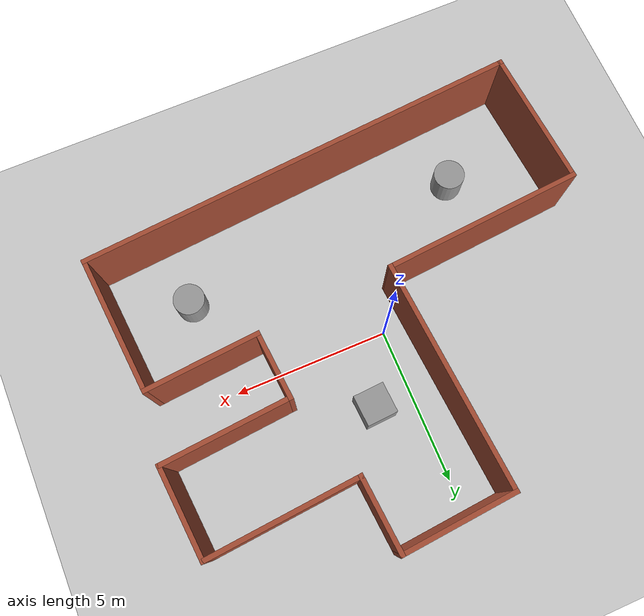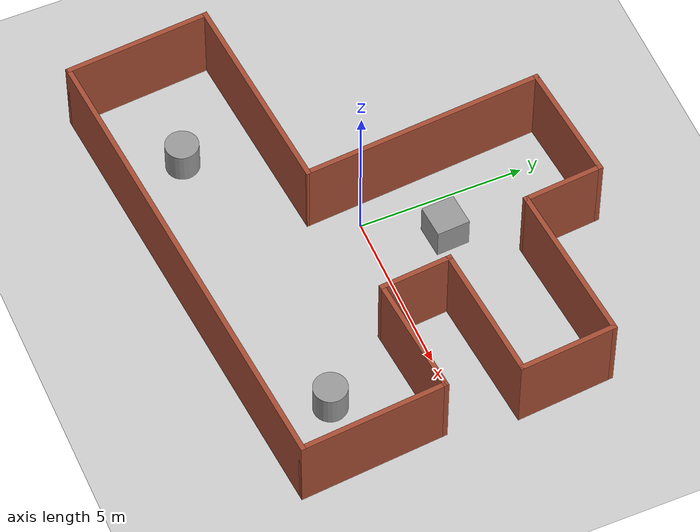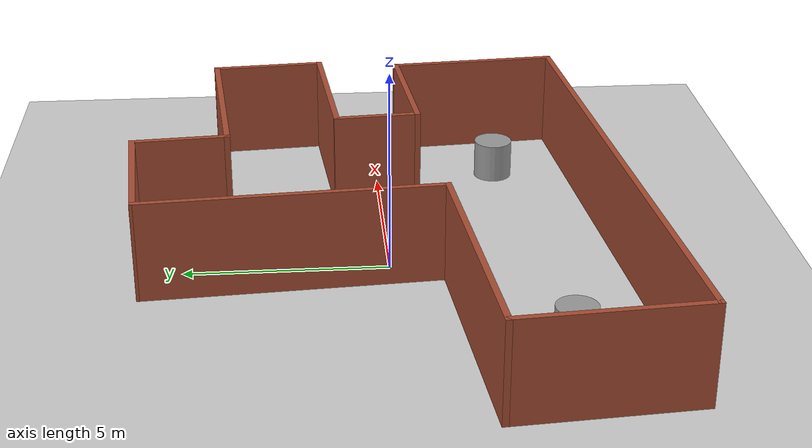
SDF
<sdf version="1.7">
 <world name="default">
  <model name="ground_plane">
   <static>1</static>
   <link name="link">
    <collision name="collision">
     <geometry><plane><normal>0 0 1</normal><size>100 100</size></plane></geometry>
     <surface><friction><ode><mu>100</mu><mu2>50</mu2></ode></friction></surface>
    </collision>
    <visual name="visual">
     <cast_shadows>0</cast_shadows>
     <geometry><plane><normal>0 0 1</normal><size>100 100</size></plane></geometry>
     <material>
      <script><uri>file://media/materials/scripts/gazebo.material</uri><name>Gazebo/Grey</name></script>
     </material>
    </visual>
   </link>
  </model>
  <gravity>0 0 -9.8</gravity>
  <magnetic_field>6e-06 2.3e-05 -4.2e-05</magnetic_field>
  <atmosphere type="adiabatic"/>
  <physics type="ode">
   <max_step_size>0.001</max_step_size>
   <real_time_factor>1</real_time_factor>
   <real_time_update_rate>1000</real_time_update_rate>
  </physics>
  <scene><ambient>0.4 0.4 0.4 1</ambient><background>0.7 0.7 0.7 1</background><shadows>1</shadows></scene>
  <spherical_coordinates>
   <surface_model>EARTH_WGS84</surface_model>
   <latitude_deg>0</latitude_deg>
   <longitude_deg>0</longitude_deg>
   <elevation>0</elevation>
   <heading_deg>0</heading_deg>
  </spherical_coordinates>
  <model name="house.world">
   <pose>0.215966 1.1848 0 0 -0 0.080095</pose>
   <link name="Wall_12">
    <collision name="Wall_12_Collision">
     <geometry><box><size>6.5 0.15 2.5</size></box></geometry>
     <pose>0 0 1.25 0 -0 0</pose>
    </collision>
    <visual name="Wall_12_Visual">
     <pose>0 0 1.25 0 -0 0</pose>
     <geometry><box><size>6.5 0.15 2.5</size></box></geometry>
     <material>
      <script><uri>file://media/materials/scripts/gazebo.material</uri><name>Gazebo/Bricks</name></script>
      <ambient>1 1 1 1</ambient>
     </material>
     <meta><layer>0</layer></meta>
    </visual>
    <pose>-4.25 -2.43594 0 0 -0 3.14159</pose>
   </link>
   <link name="Wall_13">
    <collision name="Wall_13_Collision">
     <geometry><box><size>4.5 0.15 2.5</size></box></geometry>
     <pose>0 0 1.25 0 -0 0</pose>
    </collision>
    <visual name="Wall_13_Visual">
     <pose>0 0 1.25 0 -0 0</pose>
     <geometry><box><size>4.5 0.15 2.5</size></box></geometry>
     <material>
      <script><uri>file://media/materials/scripts/gazebo.material</uri><name>Gazebo/Bricks</name></script>
      <ambient>1 1 1 1</ambient>
     </material>
     <meta><layer>0</layer></meta>
    </visual>
    <pose>-7.425 -4.61094 0 0 -0 -1.5708</pose>
   </link>
   <link name="Wall_14">
    <collision name="Wall_14_Collision">
     <geometry><box><size>14.5 0.15 2.5</size></box></geometry>
     <pose>0 0 1.25 0 -0 0</pose>
    </collision>
    <visual name="Wall_14_Visual">
     <pose>0 0 1.25 0 -0 0</pose>
     <geometry><box><size>14.5 0.15 2.5</size></box></geometry>
     <material>
      <script><uri>file://media/materials/scripts/gazebo.material</uri><name>Gazebo/Bricks</name></script>
      <ambient>1 1 1 1</ambient>
     </material>
     <meta><layer>0</layer></meta>
    </visual>
    <pose>-0.25 -6.78594 0 0 -0 0</pose>
   </link>
   <link name="Wall_15">
    <collision name="Wall_15_Collision">
     <geometry><box><size>4.5 0.15 2.5</size></box></geometry>
     <pose>0 0 1.25 0 -0 0</pose>
    </collision>
    <visual name="Wall_15_Visual">
     <pose>0 0 1.25 0 -0 0</pose>
     <geometry><box><size>4.5 0.15 2.5</size></box></geometry>
     <material>
      <script><uri>file://media/materials/scripts/gazebo.material</uri><name>Gazebo/Bricks</name></script>
      <ambient>1 1 1 1</ambient>
     </material>
     <meta><layer>0</layer></meta>
    </visual>
    <pose>6.925 -4.61094 0 0 -0 1.5708</pose>
   </link>
   <link name="Wall_16">
    <collision name="Wall_16_Collision">
     <geometry><box><size>3.75 0.15 2.5</size></box></geometry>
     <pose>0 0 1.25 0 -0 0</pose>
    </collision>
    <visual name="Wall_16_Visual">
     <pose>0 0 1.25 0 -0 0</pose>
     <geometry><box><size>3.75 0.15 2.5</size></box></geometry>
     <material>
      <script><uri>file://media/materials/scripts/gazebo.material</uri><name>Gazebo/Bricks</name></script>
      <ambient>1 1 1 1</ambient>
     </material>
     <meta><layer>0</layer></meta>
    </visual>
    <pose>5.125 -2.43594 0 0 -0 3.14159</pose>
   </link>
   <link name="Wall_17">
    <collision name="Wall_17_Collision">
     <geometry><box><size>2.25 0.15 2.5</size></box></geometry>
     <pose>0 0 1.25 0 -0 0</pose>
    </collision>
    <visual name="Wall_17_Visual">
     <pose>0 0 1.25 0 -0 0</pose>
     <geometry><box><size>2.25 0.15 2.5</size></box></geometry>
     <material>
      <script><uri>file://media/materials/scripts/gazebo.material</uri><name>Gazebo/Bricks</name></script>
      <ambient>1 1 1 1</ambient>
     </material>
     <meta><layer>0</layer></meta>
    </visual>
    <pose>3.325 -1.38594 0 0 -0 1.5708</pose>
   </link>
   <link name="Wall_18">
    <collision name="Wall_18_Collision">
     <geometry><box><size>4.25 0.15 2.5</size></box></geometry>
     <pose>0 0 1.25 0 -0 0</pose>
    </collision>
    <visual name="Wall_18_Visual">
     <pose>0 0 1.25 0 -0 0</pose>
     <geometry><box><size>4.25 0.15 2.5</size></box></geometry>
     <material>
      <script><uri>file://media/materials/scripts/gazebo.material</uri><name>Gazebo/Bricks</name></script>
      <ambient>1 1 1 1</ambient>
     </material>
     <meta><layer>0</layer></meta>
    </visual>
    <pose>5.375 -0.335943 0 0 -0 0</pose>
   </link>
   <link name="Wall_19">
    <collision name="Wall_19_Collision">
     <geometry><box><size>3 0.15 2.5</size></box></geometry>
     <pose>0 0 1.25 0 -0 0</pose>
    </collision>
    <visual name="Wall_19_Visual">
     <pose>0 0 1.25 0 -0 0</pose>
     <geometry><box><size>3 0.15 2.5</size></box></geometry>
     <material>
      <script><uri>file://media/materials/scripts/gazebo.material</uri><name>Gazebo/Bricks</name></script>
      <ambient>1 1 1 1</ambient>
     </material>
     <meta><layer>0</layer></meta>
    </visual>
    <pose>7.425 1.08906 0 0 -0 1.5708</pose>
   </link>
   <link name="Wall_20">
    <collision name="Wall_20_Collision">
     <geometry><box><size>5 0.15 2.5</size></box></geometry>
     <pose>0 0 1.25 0 -0 0</pose>
    </collision>
    <visual name="Wall_20_Visual">
     <pose>0 0 1.25 0 -0 0</pose>
     <geometry><box><size>5 0.15 2.5</size></box></geometry>
     <material>
      <script><uri>file://media/materials/scripts/gazebo.material</uri><name>Gazebo/Bricks</name></script>
      <ambient>1 1 1 1</ambient>
     </material>
     <meta><layer>0</layer></meta>
    </visual>
    <pose>5 2.51406 0 0 -0 3.14159</pose>
   </link>
   <link name="Wall_21">
    <collision name="Wall_21_Collision">
     <geometry><box><size>2.5 0.15 2.5</size></box></geometry>
     <pose>0 0 1.25 0 -0 0</pose>
    </collision>
    <visual name="Wall_21_Visual">
     <pose>0 0 1.25 0 -0 0</pose>
     <geometry><box><size>2.5 0.15 2.5</size></box></geometry>
     <material>
      <script><uri>file://media/materials/scripts/gazebo.material</uri><name>Gazebo/Bricks</name></script>
      <ambient>1 1 1 1</ambient>
     </material>
     <meta><layer>0</layer></meta>
    </visual>
    <pose>2.575 3.68906 0 0 -0 1.5708</pose>
   </link>
   <link name="Wall_22">
    <collision name="Wall_22_Collision">
     <geometry><box><size>3.75 0.15 2.5</size></box></geometry>
     <pose>0 0 1.25 0 -0 0</pose>
    </collision>
    <visual name="Wall_22_Visual">
     <pose>0 0 1.25 0 -0 0</pose>
     <geometry><box><size>3.75 0.15 2.5</size></box></geometry>
     <material>
      <script><uri>file://media/materials/scripts/gazebo.material</uri><name>Gazebo/Bricks</name></script>
      <ambient>1 1 1 1</ambient>
     </material>
     <meta><layer>0</layer></meta>
    </visual>
    <pose>0.775 4.86406 0 0 -0 3.14159</pose>
   </link>
   <link name="Wall_26">
    <collision name="Wall_26_Collision">
     <geometry><box><size>7.45017 0.15 2.5</size></box></geometry>
     <pose>0 0 1.25 0 -0 0</pose>
    </collision>
    <visual name="Wall_26_Visual">
     <pose>0 0 1.25 0 -0 0</pose>
     <geometry><box><size>7.45017 0.15 2.5</size></box></geometry>
     <material>
      <script><uri>file://media/materials/scripts/gazebo.material</uri><name>Gazebo/Bricks</name></script>
      <ambient>1 1 1 1</ambient>
     </material>
     <meta><layer>0</layer></meta>
    </visual>
    <pose>-1.05 1.21406 0 0 -0 -1.57765</pose>
   </link>
   <static>1</static>
  </model>
  <model name="unit_cylinder">
   <pose>-3.98267 -3.8342 0.499997 -6e-06 -0 -0.001062</pose>
   <link name="link">
    <inertial>
     <mass>1</mass>
     <inertia><ixx>0.145833</ixx><ixy>0</ixy><ixz>0</ixz><iyy>0.145833</iyy><iyz>0</iyz><izz>0.125</izz></inertia>
    </inertial>
    <collision name="collision">
     <geometry><cylinder><radius>0.5</radius><length>1</length></cylinder></geometry>
    </collision>
    <visual name="visual">
     <geometry><cylinder><radius>0.5</radius><length>1</length></cylinder></geometry>
     <material>
      <script><name>Gazebo/Grey</name><uri>file://media/materials/scripts/gazebo.material</uri></script>
     </material>
    </visual>
   </link>
  </model>
  <model name="unit_cylinder_0">
   <pose>5.28798 -3.19624 0.499994 -3e-06 -1e-06 -0</pose>
   <link name="link">
    <inertial>
     <mass>1</mass>
     <inertia><ixx>0.145833</ixx><ixy>0</ixy><ixz>0</ixz><iyy>0.145833</iyy><iyz>0</iyz><izz>0.125</izz></inertia>
    </inertial>
    <collision name="collision">
     <geometry><cylinder><radius>0.5</radius><length>1</length></cylinder></geometry>
    </collision>
    <visual name="visual">
     <geometry><cylinder><radius>0.5</radius><length>1</length></cylinder></geometry>
     <material>
      <script><name>Gazebo/Grey</name><uri>file://media/materials/scripts/gazebo.material</uri></script>
     </material>
    </visual>
   </link>
  </model>
  <model name="unit_box">
   <pose>1.2474 2.06769 0.5 0 -0 0.059834</pose>
   <link name="link">
    <inertial>
     <mass>1</mass>
     <inertia>
      <ixx>0.166667</ixx>
      <ixy>0</ixy>
      <ixz>0</ixz>
      <iyy>0.166667</iyy>
      <iyz>0</iyz>
      <izz>0.166667</izz>
     </inertia>
    </inertial>
    <collision name="collision"><geometry><box><size>1 1 1</size></box></geometry></collision>
    <visual name="visual">
     <geometry><box><size>1 1 1</size></box></geometry>
     <material>
      <script><name>Gazebo/Grey</name><uri>file://media/materials/scripts/gazebo.material</uri></script>
     </material>
    </visual>
   </link>
  </model>
  <light name="user_point_light_0" type="point">
   <pose>1.47958 -0.378145 1 0 -0 0</pose>
   <diffuse>0.5 0.5 0.5 1</diffuse>
   <specular>0.1 0.1 0.1 1</specular>
   <attenuation>
    <range>20</range>
    <constant>0.5</constant>
    <linear>0.01</linear>
    <quadratic>0.001</quadratic>
   </attenuation>
   <cast_shadows>0</cast_shadows>
   <direction>0 0 -1</direction>
   <spot><inner_angle>0</inner_angle><outer_angle>0</outer_angle><falloff>0</falloff></spot>
  </light>
 </world>
</sdf>
